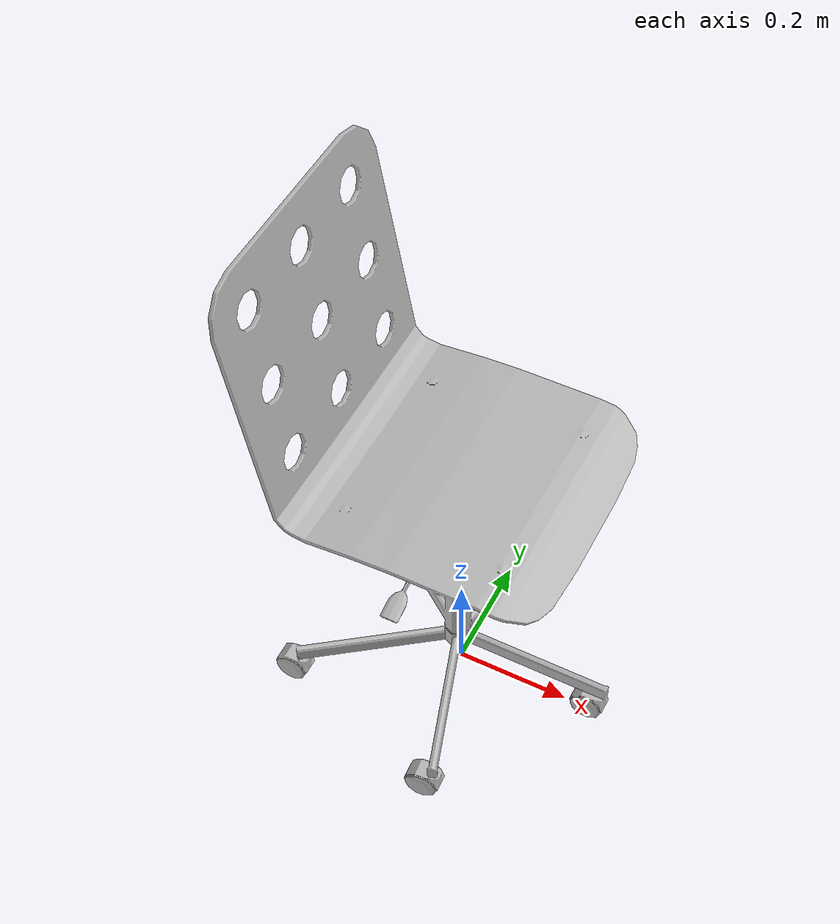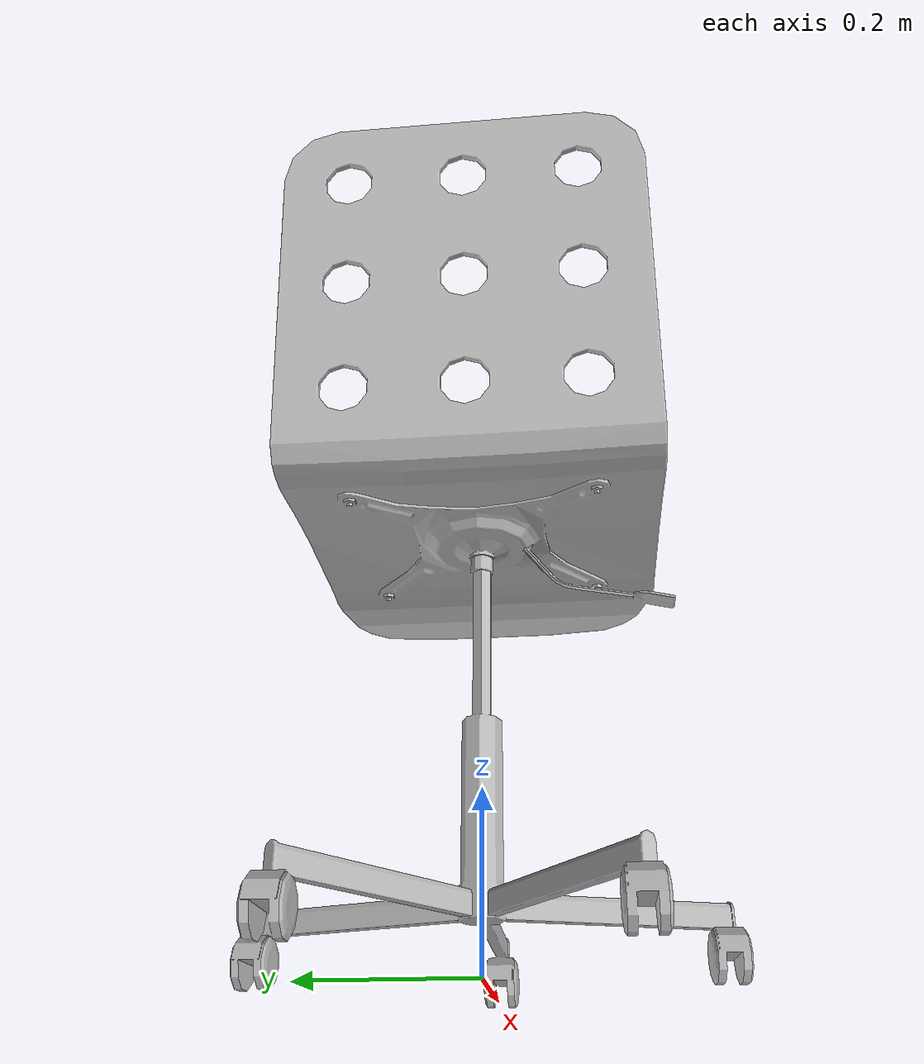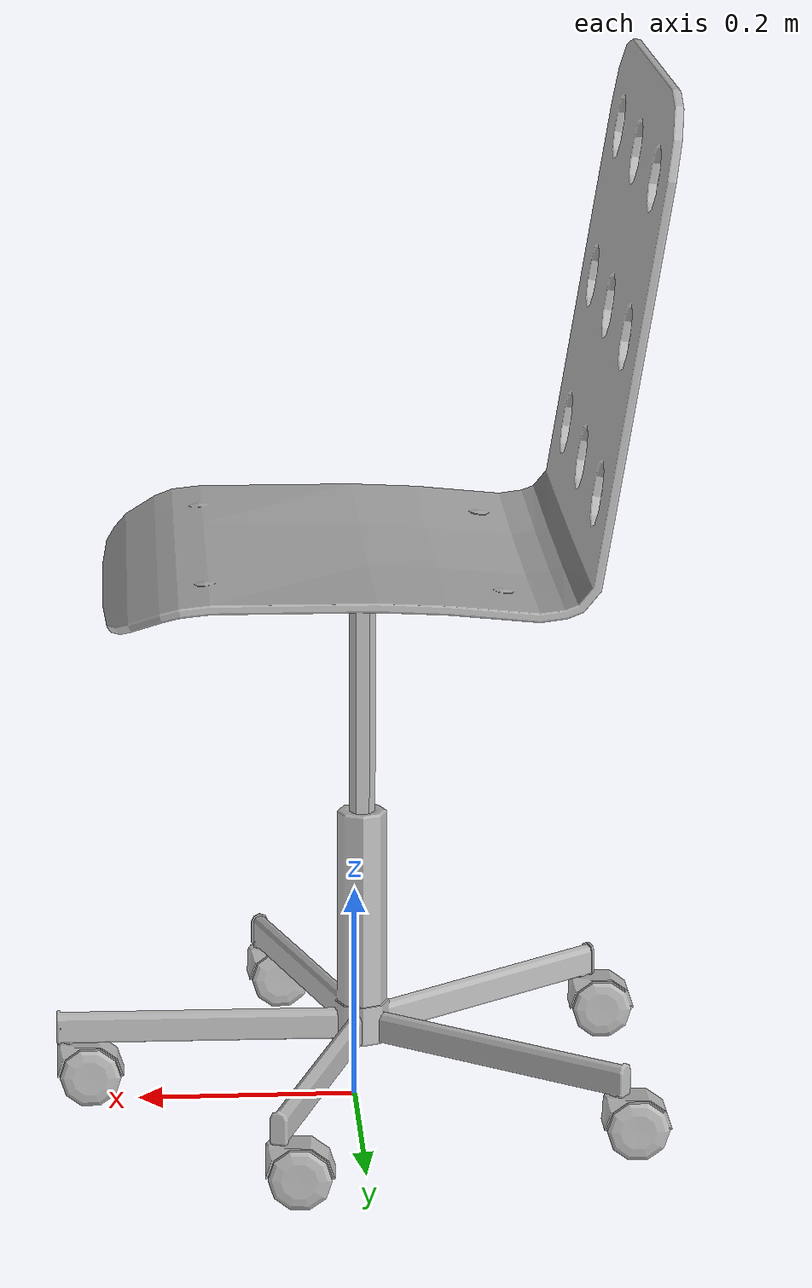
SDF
<?xml version='1.0'?>
<sdf version='1.4'>
  <model name='s__667'>
    <pose>0 0 0 0 0 0</pose>
    <static>true</static>
    <link name='link'>
      <collision name='collision'>
        <pose>0 0 0 0 0 0</pose>
        <geometry>
          <box>
            <size>0.550002 0.56 2</size>
          </box>
        </geometry>
      </collision>
      <visual name='visual'>
        <pose>0 0 0 0 0 0</pose>
        <geometry>
          <mesh><uri>model://s__667/s__667.dae</uri></mesh>
        </geometry>
      </visual>
    </link>
  </model>
</sdf>
